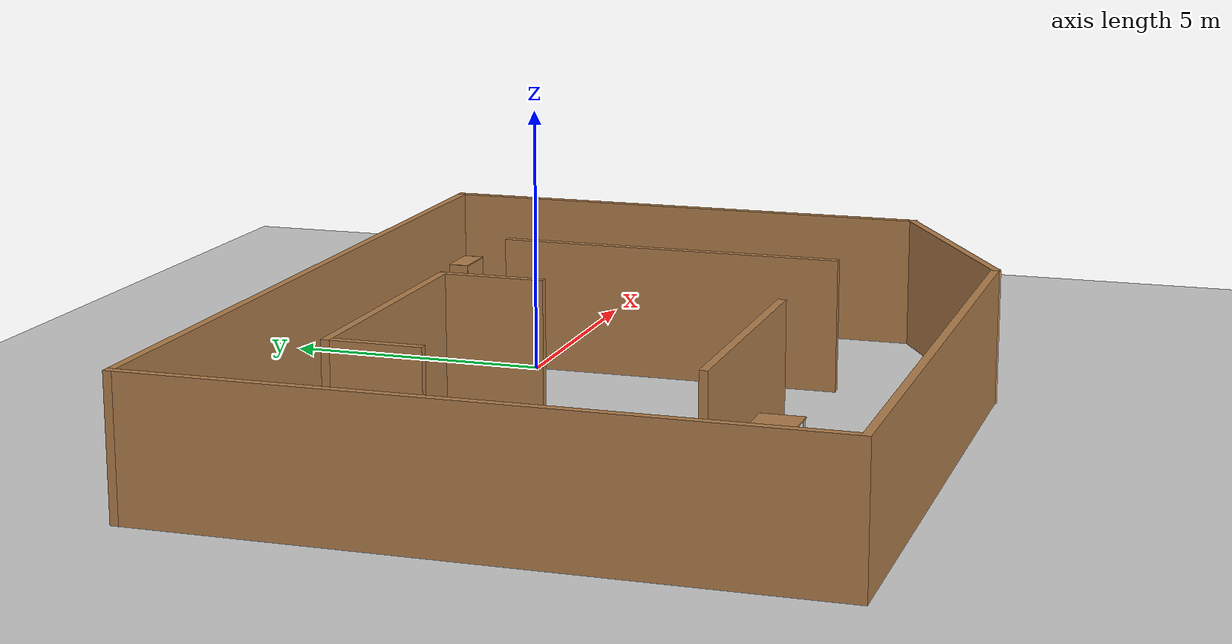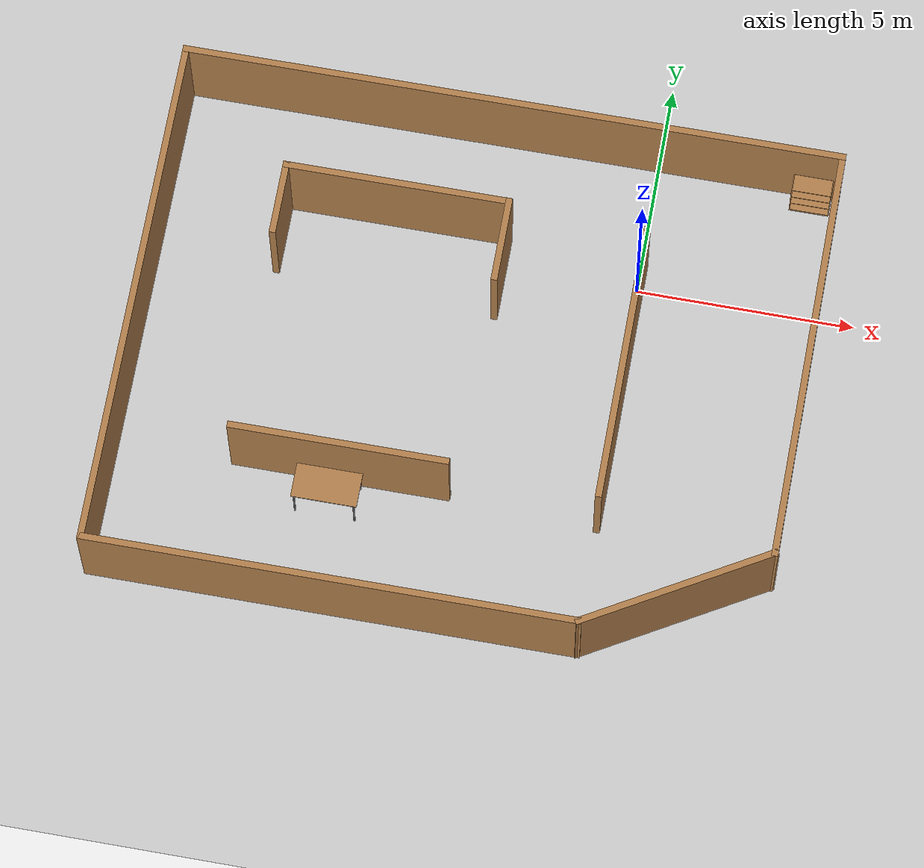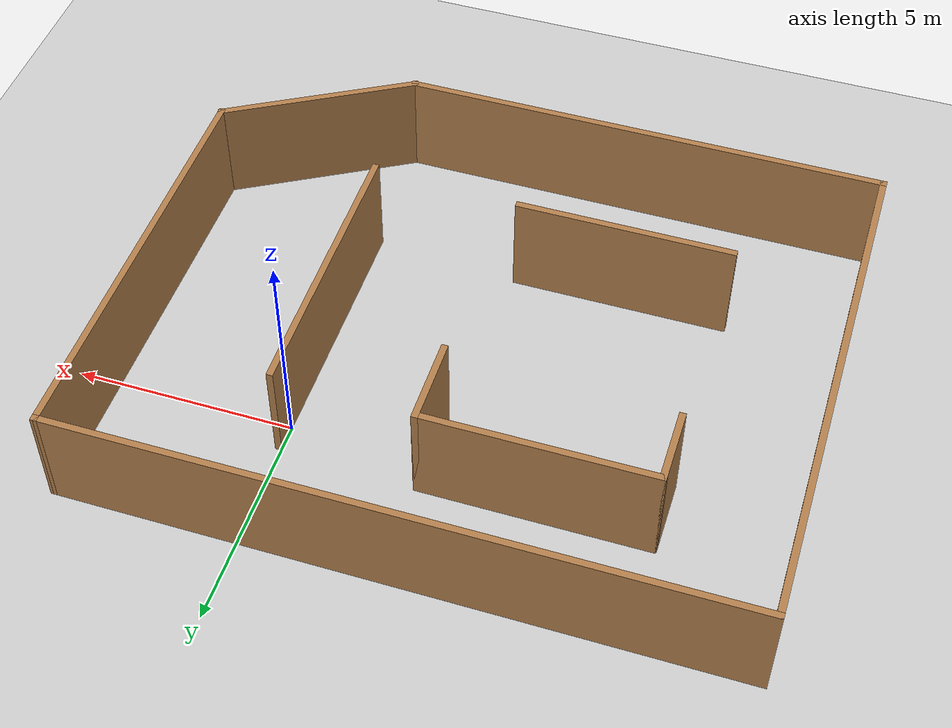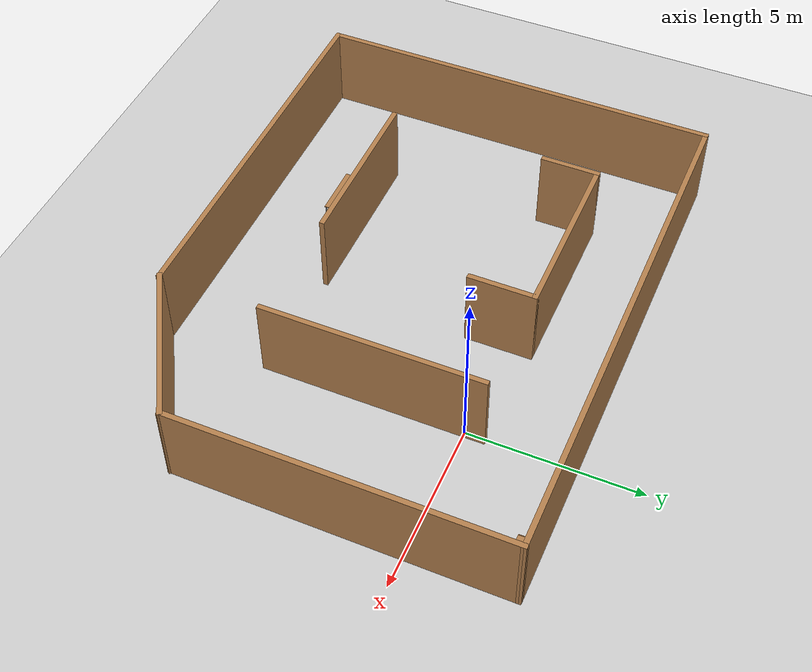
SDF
<sdf version="1.7">
 <world name="default">
  <light name="sun" type="directional">
   <pose>0 0 10 0 -0 0</pose>
   <diffuse>0.8 0.8 0.8 1</diffuse>
   <specular>0.2 0.2 0.2 1</specular>
   <attenuation>
    <range>1000</range>
    <constant>0.9</constant>
    <linear>0.01</linear>
    <quadratic>0.001</quadratic>
   </attenuation>
   <direction>-0.5 0.1 -0.9</direction>
   <spot><inner_angle>0</inner_angle><outer_angle>0</outer_angle><falloff>0</falloff></spot>
  </light>
  <model name="ground_plane">
   <static>1</static>
   <link name="link">
    <collision name="collision">
     <geometry><plane><normal>0 0 1</normal><size>100 100</size></plane></geometry>
     <surface>
      <contact><collide_bitmask>65535</collide_bitmask></contact>
      <friction><ode><mu>100</mu><mu2>50</mu2></ode></friction>
     </surface>
    </collision>
    <visual name="visual">
     <cast_shadows>0</cast_shadows>
     <geometry><plane><normal>0 0 1</normal><size>100 100</size></plane></geometry>
     <material>
      <script><uri>file://media/materials/scripts/gazebo.material</uri><name>Gazebo/Grey</name></script>
     </material>
    </visual>
   </link>
  </model>
  <gravity>0 0 -9.8</gravity>
  <magnetic_field>6e-06 2.3e-05 -4.2e-05</magnetic_field>
  <atmosphere type="adiabatic"/>
  <physics type="ode">
   <max_step_size>0.001</max_step_size>
   <real_time_factor>1</real_time_factor>
   <real_time_update_rate>1000</real_time_update_rate>
  </physics>
  <scene><ambient>0.4 0.4 0.4 1</ambient><background>0.7 0.7 0.7 1</background><shadows>1</shadows></scene>
  <spherical_coordinates>
   <surface_model>EARTH_WGS84</surface_model>
   <latitude_deg>0</latitude_deg>
   <longitude_deg>0</longitude_deg>
   <elevation>0</elevation>
   <heading_deg>0</heading_deg>
  </spherical_coordinates>
  <model name="simple_map">
   <pose>-3.42335 -2.86256 0 0 -0 0</pose>
   <link name="Wall_10">
    <collision name="Wall_10_Collision">
     <geometry><box><size>1.75 0.15 2.5</size></box></geometry>
     <pose>0 0 1.25 0 -0 0</pose>
    </collision>
    <visual name="Wall_10_Visual">
     <pose>0 0 1.25 0 -0 0</pose>
     <geometry><box><size>1.75 0.15 2.5</size></box></geometry>
     <material>
      <script><uri>file://media/materials/scripts/gazebo.material</uri><name>Gazebo/Wood</name></script>
      <ambient>0.921569 0.807843 0.615686 1</ambient>
     </material>
     <meta><layer>0</layer></meta>
    </visual>
    <pose>-4.77646 2.74651 0 0 -0 -1.5708</pose>
   </link>
   <link name="Wall_12">
    <collision name="Wall_12_Collision">
     <geometry><box><size>5 0.15 2.5</size></box></geometry>
     <pose>0 0 1.25 0 -0 0</pose>
    </collision>
    <visual name="Wall_12_Visual">
     <pose>0 0 1.25 0 -0 0</pose>
     <geometry><box><size>5 0.15 2.5</size></box></geometry>
     <material>
      <script><uri>file://media/materials/scripts/gazebo.material</uri><name>Gazebo/Wood</name></script>
      <ambient>0.435294 0.796078 0.67451 1</ambient>
     </material>
     <meta><layer>0</layer></meta>
    </visual>
    <pose>-2.38664 -2.78567 0 0 -0 0</pose>
   </link>
   <link name="Wall_14">
    <collision name="Wall_14_Collision">
     <geometry><box><size>6.5 0.15 2.5</size></box></geometry>
     <pose>0 0 1.25 0 -0 0</pose>
    </collision>
    <visual name="Wall_14_Visual">
     <pose>0 0 1.25 0 -0 0</pose>
     <geometry><box><size>6.5 0.15 2.5</size></box></geometry>
     <material>
      <script><uri>file://media/materials/scripts/gazebo.material</uri><name>Gazebo/Wood</name></script>
      <ambient>0.921569 0.807843 0.615686 1</ambient>
     </material>
     <meta><layer>0</layer></meta>
    </visual>
    <pose>3.49055 0.230791 0 0 -0 -1.5708</pose>
   </link>
   <link name="Wall_16">
    <collision name="Wall_16_Collision">
     <geometry><box><size>11.25 0.15 2.5</size></box></geometry>
     <pose>0 0 1.25 0 -0 0</pose>
    </collision>
    <visual name="Wall_16_Visual">
     <pose>0 0 1.25 0 -0 0</pose>
     <geometry><box><size>11.25 0.15 2.5</size></box></geometry>
     <material>
      <script><uri>file://media/materials/scripts/gazebo.material</uri><name>Gazebo/Wood</name></script>
      <ambient>0.996078 0.47451 0.0196078 1</ambient>
     </material>
     <meta><layer>0</layer></meta>
    </visual>
    <pose>-2.00558 -5.91134 0 0 -0 0</pose>
   </link>
   <link name="Wall_17">
    <collision name="Wall_17_Collision">
     <geometry><box><size>4.75 0.15 2.5</size></box></geometry>
     <pose>0 0 1.25 0 -0 0</pose>
    </collision>
    <visual name="Wall_17_Visual">
     <pose>0 0 1.25 0 -0 0</pose>
     <geometry><box><size>4.75 0.15 2.5</size></box></geometry>
     <material>
      <script><uri>file://media/materials/scripts/gazebo.material</uri><name>Gazebo/Wood</name></script>
      <ambient>0.996078 0.47451 0.0196078 1</ambient>
     </material>
     <meta><layer>0</layer></meta>
    </visual>
    <pose>5.53627 -4.76134 0 0 -0 0.523599</pose>
   </link>
   <link name="Wall_18">
    <collision name="Wall_18_Collision">
     <geometry><box><size>9.70001 0.15 2.5</size></box></geometry>
     <pose>0 0 1.25 0 -0 0</pose>
    </collision>
    <visual name="Wall_18_Visual">
     <pose>0 0 1.25 0 -0 0</pose>
     <geometry><box><size>9.70001 0.15 2.5</size></box></geometry>
     <material>
      <script><uri>file://media/materials/scripts/gazebo.material</uri><name>Gazebo/Wood</name></script>
      <ambient>0.996078 0.47451 0.0196078 1</ambient>
     </material>
     <meta><layer>0</layer></meta>
    </visual>
    <pose>7.53627 1.16366 0 0 -0 1.56909</pose>
   </link>
   <link name="Wall_2">
    <collision name="Wall_2_Collision">
     <geometry><box><size>12 0.15 2.5</size></box></geometry>
     <pose>0 0 1.25 0 -0 0</pose>
    </collision>
    <visual name="Wall_2_Visual">
     <pose>0 0 1.25 0 -0 0</pose>
     <geometry><box><size>12 0.15 2.5</size></box></geometry>
     <material>
      <script><uri>file://media/materials/scripts/gazebo.material</uri><name>Gazebo/Wood</name></script>
      <ambient>0.435294 0.796078 0.67451 1</ambient>
     </material>
     <meta><layer>0</layer></meta>
    </visual>
    <pose>-7.55558 0.013662 0 0 -0 -1.5708</pose>
   </link>
   <link name="Wall_5">
    <collision name="Wall_5_Collision">
     <geometry><box><size>15.25 0.15 2.5</size></box></geometry>
     <pose>0 0 1.25 0 -0 0</pose>
    </collision>
    <visual name="Wall_5_Visual">
     <pose>0 0 1.25 0 -0 0</pose>
     <geometry><box><size>15.25 0.15 2.5</size></box></geometry>
     <material>
      <script><uri>file://media/materials/scripts/gazebo.material</uri><name>Gazebo/Wood</name></script>
      <ambient>0.435294 0.796078 0.67451 1</ambient>
     </material>
     <meta><layer>0</layer></meta>
    </visual>
    <pose>-0.005584 5.93866 0 0 -0 3.14159</pose>
   </link>
   <link name="Wall_7">
    <collision name="Wall_7_Collision">
     <geometry><box><size>5.25 0.15 2.5</size></box></geometry>
     <pose>0 0 1.25 0 -0 0</pose>
    </collision>
    <visual name="Wall_7_Visual">
     <pose>0 0 1.25 0 -0 0</pose>
     <geometry><box><size>5.25 0.15 2.5</size></box></geometry>
     <material>
      <script><uri>file://media/materials/scripts/gazebo.material</uri><name>Gazebo/Wood</name></script>
      <ambient>0.921569 0.807843 0.615686 1</ambient>
     </material>
     <meta><layer>0</layer></meta>
    </visual>
    <pose>-2.22646 3.54651 0 0 -0 0</pose>
   </link>
   <link name="Wall_8">
    <collision name="Wall_8_Collision">
     <geometry><box><size>2 0.15 2.5</size></box></geometry>
     <pose>0 0 1.25 0 -0 0</pose>
    </collision>
    <visual name="Wall_8_Visual">
     <pose>0 0 1.25 0 -0 0</pose>
     <geometry><box><size>2 0.15 2.5</size></box></geometry>
     <material>
      <script><uri>file://media/materials/scripts/gazebo.material</uri><name>Gazebo/Wood</name></script>
      <ambient>0.921569 0.807843 0.615686 1</ambient>
     </material>
     <meta><layer>0</layer></meta>
    </visual>
    <pose>0.323539 2.62151 0 0 -0 -1.5708</pose>
   </link>
   <static>1</static>
  </model>
  <model name="bookshelf">
   <static>1</static>
   <link name="link">
    <inertial><mass>1</mass></inertial>
    <collision name="back">
     <pose>0 0.005 0.6 0 -0 0</pose>
     <geometry><box><size>0.9 0.01 1.2</size></box></geometry>
    </collision>
    <visual name="visual1">
     <pose>0 0.005 0.6 0 -0 0</pose>
     <geometry><box><size>0.9 0.01 1.2</size></box></geometry>
     <material>
      <script><uri>file://media/materials/scripts/gazebo.material</uri><name>Gazebo/Wood</name></script>
     </material>
    </visual>
    <collision name="left_side">
     <pose>0.45 -0.195 0.6 0 -0 0</pose>
     <geometry><box><size>0.02 0.4 1.2</size></box></geometry>
    </collision>
    <visual name="visual2">
     <pose>0.45 -0.195 0.6 0 -0 0</pose>
     <geometry><box><size>0.02 0.4 1.2</size></box></geometry>
     <material>
      <script><uri>file://media/materials/scripts/gazebo.material</uri><name>Gazebo/Wood</name></script>
     </material>
    </visual>
    <collision name="right_side">
     <pose>-0.45 -0.195 0.6 0 -0 0</pose>
     <geometry><box><size>0.02 0.4 1.2</size></box></geometry>
    </collision>
    <visual name="visual3">
     <pose>-0.45 -0.195 0.6 0 -0 0</pose>
     <geometry><box><size>0.02 0.4 1.2</size></box></geometry>
     <material>
      <script><uri>file://media/materials/scripts/gazebo.material</uri><name>Gazebo/Wood</name></script>
     </material>
    </visual>
    <collision name="bottom">
     <pose>0 -0.195 0.03 0 -0 0</pose>
     <geometry><box><size>0.88 0.4 0.06</size></box></geometry>
    </collision>
    <visual name="visual4">
     <pose>0 -0.195 0.03 0 -0 0</pose>
     <geometry><box><size>0.88 0.4 0.06</size></box></geometry>
     <material>
      <script><uri>file://media/materials/scripts/gazebo.material</uri><name>Gazebo/Wood</name></script>
     </material>
    </visual>
    <collision name="top">
     <pose>0 -0.195 1.19 0 -0 0</pose>
     <geometry><box><size>0.88 0.4 0.02</size></box></geometry>
    </collision>
    <visual name="visual5">
     <pose>0 -0.195 1.19 0 -0 0</pose>
     <geometry><box><size>0.88 0.4 0.02</size></box></geometry>
     <material>
      <script><uri>file://media/materials/scripts/gazebo.material</uri><name>Gazebo/Wood</name></script>
     </material>
    </visual>
    <collision name="low_shelf">
     <pose>0 -0.195 0.43 0 -0 0</pose>
     <geometry><box><size>0.88 0.4 0.02</size></box></geometry>
    </collision>
    <visual name="visual6">
     <pose>0 -0.195 0.43 0 -0 0</pose>
     <geometry><box><size>0.88 0.4 0.02</size></box></geometry>
     <material>
      <script><uri>file://media/materials/scripts/gazebo.material</uri><name>Gazebo/Wood</name></script>
     </material>
    </visual>
    <collision name="high_shelf">
     <pose>0 -0.195 0.8 0 -0 0</pose>
     <geometry><box><size>0.88 0.4 0.02</size></box></geometry>
    </collision>
    <visual name="visual7">
     <pose>0 -0.195 0.8 0 -0 0</pose>
     <geometry><box><size>0.88 0.4 0.02</size></box></geometry>
     <material>
      <script><uri>file://media/materials/scripts/gazebo.material</uri><name>Gazebo/Wood</name></script>
     </material>
    </visual>
   </link>
   <pose>3.55197 2.99787 0 0 -0 0</pose>
  </model>
  <model name="table">
   <static>1</static>
   <link name="link">
    <collision name="surface">
     <pose>0 0 1 0 -0 0</pose>
     <geometry><box><size>1.5 0.8 0.03</size></box></geometry>
     <surface><friction><ode><mu>0.6</mu><mu2>0.6</mu2></ode></friction></surface>
    </collision>
    <visual name="visual1">
     <pose>0 0 1 0 -0 0</pose>
     <geometry><box><size>1.5 0.8 0.03</size></box></geometry>
     <material>
      <script><uri>file://media/materials/scripts/gazebo.material</uri><name>Gazebo/Wood</name></script>
     </material>
    </visual>
    <collision name="front_left_leg">
     <pose>0.68 0.38 0.5 0 -0 0</pose>
     <geometry><cylinder><radius>0.02</radius><length>1</length></cylinder></geometry>
    </collision>
    <visual name="front_left_leg">
     <pose>0.68 0.38 0.5 0 -0 0</pose>
     <geometry><cylinder><radius>0.02</radius><length>1</length></cylinder></geometry>
     <material>
      <script><uri>file://media/materials/scripts/gazebo.material</uri><name>Gazebo/Grey</name></script>
     </material>
    </visual>
    <collision name="front_right_leg">
     <pose>0.68 -0.38 0.5 0 -0 0</pose>
     <geometry><cylinder><radius>0.02</radius><length>1</length></cylinder></geometry>
    </collision>
    <visual name="front_right_leg">
     <pose>0.68 -0.38 0.5 0 -0 0</pose>
     <geometry><cylinder><radius>0.02</radius><length>1</length></cylinder></geometry>
     <material>
      <script><uri>file://media/materials/scripts/gazebo.material</uri><name>Gazebo/Grey</name></script>
     </material>
    </visual>
    <collision name="back_right_leg">
     <pose>-0.68 -0.38 0.5 0 -0 0</pose>
     <geometry><cylinder><radius>0.02</radius><length>1</length></cylinder></geometry>
    </collision>
    <visual name="back_right_leg">
     <pose>-0.68 -0.38 0.5 0 -0 0</pose>
     <geometry><cylinder><radius>0.02</radius><length>1</length></cylinder></geometry>
     <material>
      <script><uri>file://media/materials/scripts/gazebo.material</uri><name>Gazebo/Grey</name></script>
     </material>
    </visual>
    <collision name="back_left_leg">
     <pose>-0.68 0.38 0.5 0 -0 0</pose>
     <geometry><cylinder><radius>0.02</radius><length>1</length></cylinder></geometry>
    </collision>
    <visual name="back_left_leg">
     <pose>-0.68 0.38 0.5 0 -0 0</pose>
     <geometry><cylinder><radius>0.02</radius><length>1</length></cylinder></geometry>
     <material>
      <script><uri>file://media/materials/scripts/gazebo.material</uri><name>Gazebo/Grey</name></script>
     </material>
    </visual>
   </link>
   <pose>-6.0123 -6.16931 0 0 -0 0</pose>
  </model>
 </world>
</sdf>
